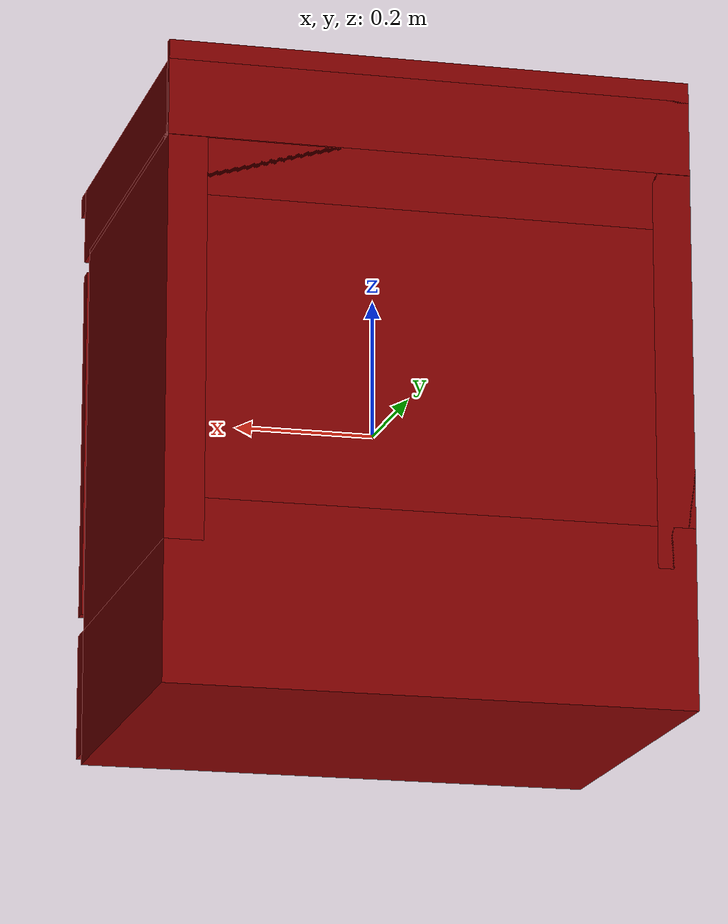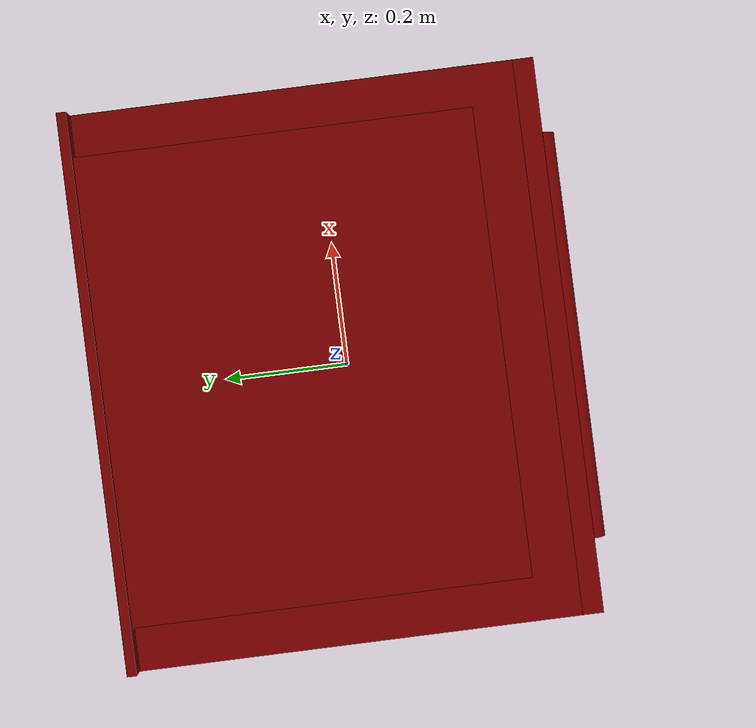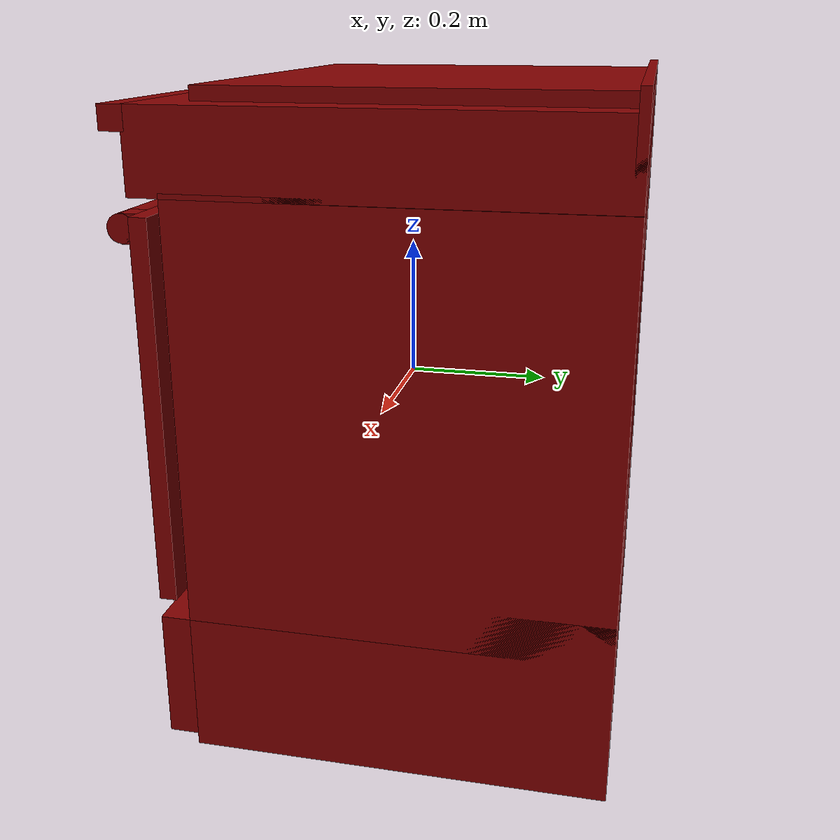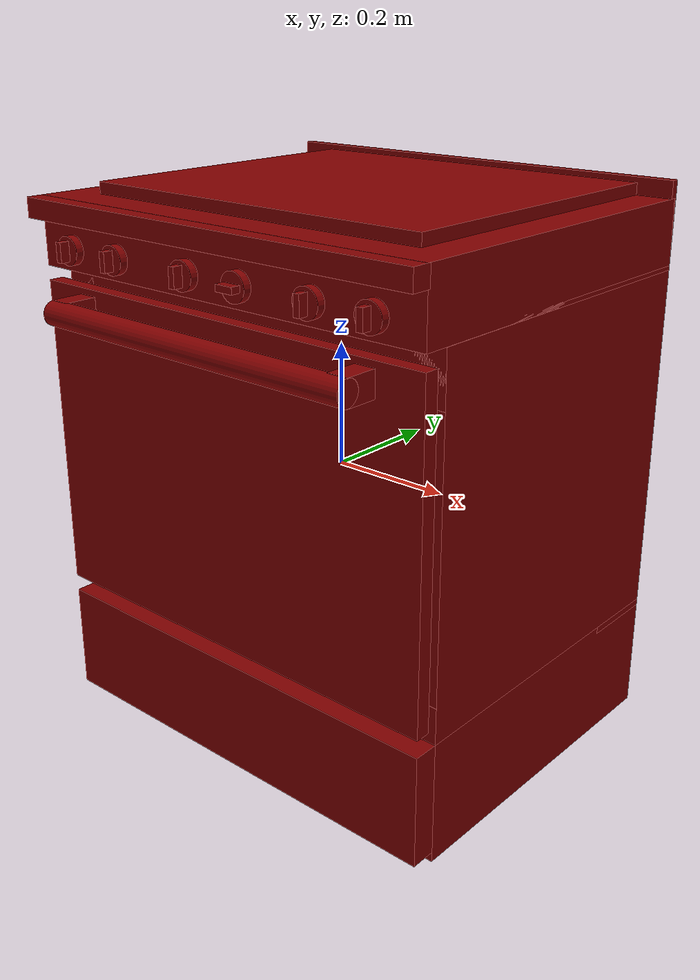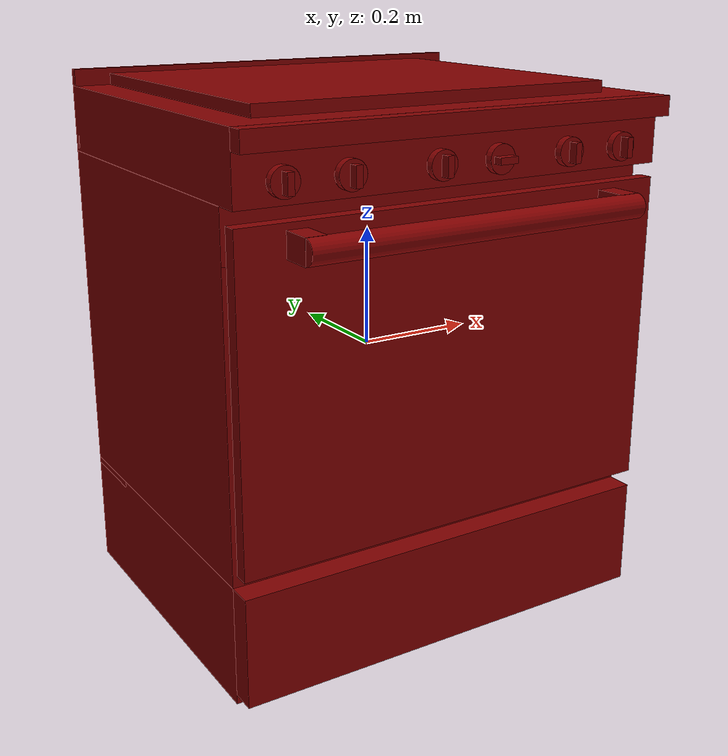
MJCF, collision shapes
<?xml version='1.0' encoding='UTF-8'?>
<mujoco model="model">
  <option timestep="0.002" gravity="0.0 0.0 -9.81"/>
  <compiler angle="radian"/>
  <asset>
    <mesh file="visuals/knob_front_left.obj" name="knob_front_left_vis"/>
    <mesh file="visuals/knob_front_right.obj" name="knob_front_right_vis"/>
    <mesh file="visuals/knob_rear_left.obj" name="knob_rear_left_vis"/>
    <mesh file="visuals/knob_rear_right.obj" name="knob_rear_right_vis"/>
    <mesh file="visuals/Body001.obj" name="Body001_vis"/>
    <mesh file="visuals/Door001.obj" name="Door001_vis"/>
    <mesh file="visuals/Door001_Clear.obj" name="Door001_Clear_vis"/>
    <mesh file="visuals/Knob001.obj" name="Knob001_vis"/>
    <mesh file="visuals/Knob002.obj" name="Knob002_vis"/>
    <mesh file="visuals/Shelf001.obj" name="Shelf001_vis"/>
    <texture file="visuals/T_BC001.png" name="Body001_material" type="2d"/>
    <material name="Body001_material" rgba="1 1 1 1.0" texture="Body001_material" shininess="0.1" specular="3"/>
    <texture file="visuals/T_BC001.png" name="knob_front_left_material" type="2d"/>
    <material name="knob_front_left_material" rgba="1 1 1 1.0" texture="knob_front_left_material" shininess="0.1" specular="1"/>
    <texture file="visuals/T_BC001.png" name="knob_front_right_material" type="2d"/>
    <material name="knob_front_right_material" rgba="1 1 1 1.0" texture="knob_front_right_material" shininess="0.1" specular="1"/>
    <texture file="visuals/T_BC001.png" name="knob_rear_left_material" type="2d"/>
    <material name="knob_rear_left_material" rgba="1 1 1 1.0" texture="knob_rear_left_material" shininess="0.1" specular="1"/>
    <texture file="visuals/T_BC001.png" name="knob_rear_right_material" type="2d"/>
    <material name="knob_rear_right_material" rgba="1 1 1 1.0" texture="knob_rear_right_material" shininess="0.1" specular="1"/>
    <texture file="visuals/T_BC001.png" name="Door001_material" type="2d"/>
    <material name="Door001_material" rgba="1 1 1 1.0" texture="Door001_material" shininess="0.1" specular="1"/>
    <texture file="visuals/T_BC001.png" name="Door001_Clear_material" type="2d"/>
    <material name="Door001_Clear_material" rgba="1 1 1 0.5" texture="Door001_Clear_material" shininess="0.1" specular="1"/>
    <texture file="visuals/T_BC001.png" name="Knob001_material" type="2d"/>
    <material name="Knob001_material" rgba="1 1 1 1.0" texture="Knob001_material" shininess="0.1" specular="1"/>
    <texture file="visuals/T_BC001.png" name="Knob002_material" type="2d"/>
    <material name="Knob002_material" rgba="1 1 1 1.0" texture="Knob002_material" shininess="0.1" specular="1"/>
    <texture file="visuals/T_BC001.png" name="Shelf001_material" type="2d"/>
    <material name="Shelf001_material" rgba="1 1 1 1.0" texture="Shelf001_material" shininess="0.1" specular="4"/>
  </asset>
  <default>
    <default class="visual">
      <geom conaffinity="0" contype="0" group="1" type="mesh"/>
    </default>
    <default class="collision">
      <geom group="0" rgba="0.5 0 0 0.5"/>
    </default>
    <default class="spawn">
      <geom group="0" rgba="1 1 1 0.5" contype="0" conaffinity="0"/>
      <site group="0" rgba="1 1 1 0.5"/>
    </default>
    <default class="region">
      <geom group="1" conaffinity="0" contype="0" rgba="0 1 0 0"/>
    </default>
  </default>
  <worldbody>
    <body>
      <body name="object">
        <geom mesh="Body001_vis" type="mesh" solimp="0.998 0.998 0.001" solref="0.001 1" friction="0.95 0.3 0.1" class="visual" material="Body001_material"/>
        <geom class="collision" type="box" pos="-0.34402626752853394 0.055402565747499466 0.029860632494091988" size="0.027638008818030357 0.2822645604610443 0.28328806161880493" quat="1.0 0.0 0.0 0.0" density="1000.0"/>
        <geom class="collision" type="box" pos="0.3441360890865326 0.05540267750620842 0.029860632494091988" size="0.027528250589966774 0.2822646498680115 0.28328806161880493" quat="1.0 0.0 0.0 0.0" density="1000.0"/>
        <geom class="collision" type="box" pos="2.865272108465433e-08 0.055402614176273346 -0.3221321403980255" size="0.3716641664505005 0.2822646200656891 0.12749764323234558" quat="1.0 0.0 0.0 0.0" density="1000.0"/>
        <geom class="collision" type="box" pos="2.865272108465433e-08 -0.24717018008232117 -0.34322062134742737" size="0.3716641664505005 0.020308177918195724 0.09009308367967606" quat="1.0 0.0 0.0 0.0" density="1000.0"/>
        <geom class="collision" type="box" pos="2.865272108465433e-08 0.055402614176273346 0.2752377688884735" size="0.3716641664505005 0.2822646200656891 0.04473291337490082" quat="1.0 0.0 0.0 0.0" density="1000.0"/>
        <geom class="collision" type="box" pos="2.865272108465433e-08 0.27195870876312256 0.023885294795036316" size="0.3716641664505005 0.06570849567651749 0.28845295310020447" quat="1.0 0.0 0.0 0.0" density="1000.0"/>
        <geom class="collision" type="box" pos="0.32416078448295593 0.0016778451390564442 0.017154984176158905" size="0.027589945122599602 0.17868469655513763 0.0013510260032489896" quat="1.0 0.0 0.0 0.0" density="1000.0"/>
        <geom class="collision" type="box" pos="0.33909156918525696 0.0016778451390564442 0.027264580130577087" size="0.027589945122599602 0.17868469655513763 0.011460619047284126" quat="1.0 0.0 0.0 0.0" density="1000.0"/>
        <geom class="collision" type="box" pos="0.3266005218029022 0.0016778451390564442 0.035905882716178894" size="0.027589945122599602 0.17868469655513763 0.003063765587285161" quat="1.0 0.0 0.0 0.0" density="1000.0"/>
        <geom class="collision" type="box" pos="-0.3259783685207367 0.0016778451390564442 0.017107784748077393" size="0.027589945122599602 0.17868469655513763 0.0013038265751674771" quat="1.0 0.0 0.0 0.0" density="1000.0"/>
        <geom class="collision" type="box" pos="-0.3385297656059265 0.0016778451390564442 0.027264580130577087" size="0.027589945122599602 0.17868469655513763 0.011460619047284126" quat="1.0 0.0 0.0 0.0" density="1000.0"/>
        <geom class="collision" type="box" pos="-0.3271794319152832 0.0016778451390564442 0.035905882716178894" size="0.027589945122599602 0.17868469655513763 0.003063765587285161" quat="1.0 0.0 0.0 0.0" density="1000.0"/>
        <geom class="collision" type="box" pos="-9.755603969097137e-08 0.03509461134672165 0.3678634762763977" size="0.37166425585746765 0.3025726079940796 0.054325878620147705" quat="1.0 0.0 0.0 0.0" density="1000.0"/>
        <geom class="collision" type="box" pos="0.0009600934572517872 0.05990978702902794 0.3847813010215759" size="0.31158381700515747 0.26489758491516113 0.05621837079524994" quat="1.0 0.0 0.0 0.0" density="1000.0"/>
        <geom class="collision" type="box" pos="-4.761386662721634e-08 0.33124834299087524 0.3842799961566925" size="0.37166422605514526 0.006418854929506779 0.06534989923238754" quat="1.0 0.0 0.0 0.0" density="1000.0"/>
        <geom class="collision" type="box" pos="3.1062924676916737e-07 -0.27926474809646606 0.40633416175842285" size="0.37166422605514526 0.016079125925898552 0.01576913148164749" quat="1.0 0.0 0.0 0.0" density="1000.0"/>
        <body name="knob_front_left">
          <joint axis="0.0 -1.0 0.0" pos="-0.3006363809108734 -0.27865397930145264 0.3468022644519806" limited="true" name="knob_front_left_joint" range="0.0 3.141592653589793" type="hinge" damping="0.05" armature="0.001" springref="-0.1"/>
          <geom mesh="knob_front_left_vis" type="mesh" solimp="0.998 0.998 0.001" solref="0.001 1" friction="0.95 0.3 0.1" class="visual" material="knob_front_left_material"/>
          <geom class="collision" type="cylinder" pos="-0.3004806935787201 -0.2749233841896057 0.34697121381759644" size="0.022574562579393387 0.006452969275414944" quat="0.7071068286895752 0.7071067690849304 0.0 0.0" density="1000.0"/>
          <geom class="collision" type="box" pos="-0.30066901445388794 -0.28849586844444275 0.3470154404640198" size="0.005231413524597883 0.008577979169785976 0.015703316777944565" quat="1.0 0.0 0.0 0.0" density="1000.0" name="knob_front_left_main"/>
        </body>
        <body name="knob_front_right">
          <joint axis="0.0 -1.0 0.0" pos="0.29257288575172424 -0.27865397930145264 0.3468022644519806" limited="true" name="knob_front_right_joint" range="0.0 3.141592653589793" type="hinge" damping="0.05" armature="0.001" springref="-0.1"/>
          <geom mesh="knob_front_right_vis" type="mesh" solimp="0.998 0.998 0.001" solref="0.001 1" friction="0.95 0.3 0.1" class="visual" material="knob_front_right_material"/>
          <geom class="collision" type="cylinder" pos="0.29287365078926086 -0.2749233841896057 0.34697121381759644" size="0.022574562579393387 0.006452969275414944" quat="0.7071068286895752 0.7071067690849304 0.0 0.0" density="1000.0"/>
          <geom class="collision" type="box" pos="0.29268530011177063 -0.28849586844444275 0.3470154404640198" size="0.005231413524597883 0.008577979169785976 0.015703316777944565" quat="1.0 0.0 0.0 0.0" density="1000.0" name="knob_front_right_main"/>
        </body>
        <body name="knob_rear_left">
          <joint axis="0.0 -1.0 0.0" pos="-0.1970641016960144 -0.27865397930145264 0.3468022644519806" limited="true" name="knob_rear_left_joint" range="0.0 3.141592653589793" type="hinge" damping="0.05" armature="0.001" springref="-0.1"/>
          <geom mesh="knob_rear_left_vis" type="mesh" solimp="0.998 0.998 0.001" solref="0.001 1" friction="0.95 0.3 0.1" class="visual" material="knob_rear_left_material"/>
          <geom class="collision" type="cylinder" pos="-0.19711965322494507 -0.2749233841896057 0.34697121381759644" size="0.022574562579393387 0.006452969275414944" quat="0.7071068286895752 0.7071067690849304 0.0 0.0" density="1000.0"/>
          <geom class="collision" type="box" pos="-0.19730797410011292 -0.28849586844444275 0.3470154404640198" size="0.005231413524597883 0.008577979169785976 0.015703316777944565" quat="1.0 0.0 0.0 0.0" density="1000.0" name="knob_rear_left_main"/>
        </body>
        <body name="knob_rear_right">
          <joint axis="0.0 -1.0 0.0" pos="0.18860802054405212 -0.27865397930145264 0.3468022644519806" limited="true" name="knob_rear_right_joint" range="0.0 3.141592653589793" type="hinge" damping="0.05" armature="0.001" springref="-0.1"/>
          <geom mesh="knob_rear_right_vis" type="mesh" solimp="0.998 0.998 0.001" solref="0.001 1" friction="0.95 0.3 0.1" class="visual" material="knob_rear_right_material"/>
          <geom class="collision" type="cylinder" pos="0.18872560560703278 -0.2749233841896057 0.34697121381759644" size="0.022574562579393387 0.006452969275414944" quat="0.7071068286895752 0.7071067690849304 0.0 0.0" density="1000.0"/>
          <geom class="collision" type="box" pos="0.18853728473186493 -0.28849586844444275 0.3470154404640198" size="0.005231413524597883 0.008577979169785976 0.015703316777944565" quat="1.0 0.0 0.0 0.0" density="1000.0" name="knob_rear_right_main"/>
        </body>
        <body name="Door001">
          <joint axis="1.0 0.0 0.0" pos="0.00013260284322313964 -0.26747801899909973 -0.2458133101463318" limited="true" name="Door001_joint" range="0.0 1.5707963267948966" type="hinge" damping="1" frictionloss="1" armature=".01" stiffness="0.05"/>
          <geom mesh="Door001_vis" type="mesh" solimp="0.998 0.998 0.001" solref="0.001 1" friction="0.95 0.3 0.1" class="visual" material="Door001_material"/>
          <geom class="collision" type="box" pos="5.809124559164047e-08 -0.25554361939430237 0.03270234540104866" size="0.37166374921798706 0.011934769339859486 0.25787872076034546" quat="1.0 0.0 0.0 0.0" density="1000.0"/>
          <geom class="collision" type="cylinder" pos="-6.037313369233743e-07 -0.3186875581741333 0.26034876704216003" size="0.01962883584201336 0.29335910081863403" quat="0.4999999701976776 0.5 0.5 0.5" density="1000.0"/>
          <geom class="collision" type="box" pos="0.2766115665435791 -0.29119494557380676 0.2601949870586395" size="0.016746893525123596 0.02831774391233921 0.019988402724266052" quat="1.0 0.0 0.0 0.0" density="1000.0"/>
          <geom class="collision" type="box" pos="-0.2769240438938141 -0.29119494557380676 0.2601949870586395" size="0.016746893525123596 0.02831774391233921 0.019988402724266052" quat="1.0 0.0 0.0 0.0" density="1000.0"/>
          <body name="Door001_Clear">
            <geom mesh="Door001_Clear_vis" type="mesh" solimp="0.998 0.998 0.001" solref="0.001 1" friction="0.95 0.3 0.1" class="visual" material="Door001_Clear_material"/>
            <geom class="collision" type="box" pos="5.809124559164047e-08 -0.24829308688640594 0.03270234912633896" size="0.2662014663219452 0.0020728178787976503 0.16036032140254974" quat="1.0 0.0 0.0 0.0" density="1000.0"/>
          </body>
        </body>
        <body name="Knob001">
          <joint axis="0.0 1.0 0.0" pos="-0.04638072848320007 -0.27865397930145264 0.3468022644519806" limited="true" name="Knob001_joint" range="0.0 4.014257279586958" type="hinge" damping="0.05" armature="0.001"/>
          <geom mesh="Knob001_vis" type="mesh" solimp="0.998 0.998 0.001" solref="0.001 1" friction="0.95 0.3 0.1" class="visual" material="Knob001_material"/>
          <geom class="collision" type="cylinder" pos="-0.04642404615879059 -0.2749233841896057 0.34697121381759644" size="0.022574562579393387 0.006452969275414944" quat="0.7071068286895752 0.7071067690849304 0.0 0.0" density="1000.0"/>
          <geom class="collision" type="box" pos="-0.046612367033958435 -0.28849586844444275 0.3470154404640198" size="0.005231413524597883 0.008577979169785976 0.015703316777944565" quat="1.0 0.0 0.0 0.0" density="1000.0"/>
        </body>
        <body name="Knob002">
          <joint axis="0.0 1.0 0.0" pos="0.0571848563849926 -0.27865397930145264 0.3470958471298218" limited="true" name="Knob002_joint" range="0.0 3.2288591161895095" type="hinge" damping="0.05" armature="0.001"/>
          <geom mesh="Knob002_vis" type="mesh" solimp="0.998 0.998 0.001" solref="0.001 1" friction="0.95 0.3 0.1" class="visual" material="Knob002_material"/>
          <geom class="collision" type="cylinder" pos="0.05717620998620987 -0.2749233841896057 0.34697121381759644" size="0.022574562579393387 0.006452969275414944" quat="0.7071068286895752 0.7071067690849304 0.0 0.0" density="1000.0"/>
          <geom class="collision" type="box" pos="0.05673101916909218 -0.28849586844444275 0.3470154404640198" size="0.015703316777944565 0.008577979169785976 0.005231414455920458" quat="1.0 0.0 0.0 0.0" density="1000.0"/>
        </body>
        <body name="Shelf001">
          <joint axis="0.0 -1.0 0.0" pos="-0.0013591349124908447 0.001485973596572876 0.02870890498161316" limited="true" name="Shelf001_joint" range="0.0 0.25" type="slide" damping="1" frictionloss="1" armature=".01" stiffness="0.05"/>
          <geom mesh="Shelf001_vis" type="mesh" solimp="0.998 0.998 0.001" solref="0.001 1" friction="0.95 0.3 0.1" class="visual" material="Shelf001_material"/>
          <geom class="collision" type="box" pos="0.0013725600438192487 0.0020056001376360655 0.030935153365135193" size="0.2908157706260681 0.19227856397628784 0.0032185327727347612" quat="1.0 0.0 0.0 0.0" density="1000.0"/>
          <geom class="collision" type="box" pos="0.2982712686061859 0.0020056001376360655 0.02805294096469879" size="0.012118300423026085 0.19227856397628784 0.0032185327727347612" quat="0.9565491080284119 0.0 0.2915712893009186 0.0" density="1000.0"/>
          <geom class="collision" type="box" pos="-0.2965599596500397 0.0020056001376360655 0.02805294096469879" size="0.012118300423026085 0.19227856397628784 0.0032185327727347612" quat="0.9565491080284119 0.0 -0.2915712893009186 0.0" density="1000.0"/>
        </body>
        <site type="cylinder" rgba="0.3 0.4 1 0.5" size="0.04812531918287277 0.011605587787926197" pos="-0.17791149020195007 -0.05579596757888794 0.40159741044044495" name="burner_on_front_left"/>
        <site type="cylinder" rgba="0.3 0.4 1 0.5" size="0.046495940536260605 0.011605587787926197" pos="0.1766817569732666 -0.0551004558801651 0.40159741044044495" name="burner_on_front_right"/>
        <site type="cylinder" rgba="0.3 0.4 1 0.5" size="0.04723677411675453 0.011605587787926197" pos="-0.17778095602989197 0.18014904856681824 0.4006651043891907" name="burner_on_rear_left"/>
        <site type="cylinder" rgba="0.3 0.4 1 0.5" size="0.04766416922211647 0.011605587787926197" pos="0.17698660492897034 0.17922794818878174 0.40159741044044495" name="burner_on_rear_right"/>
        <geom class="region" name="reg_int" type="box" pos="0.0004807114601135254 -0.009686745703220367 0.017490632832050323" size="0.31678175926208496 0.21685624867677689 0.21230459958314896"/>
        <site name="burner_front_left_place_site" type="cylinder" rgba="0.3 0.4 1 0" size="0.04812531918287277 0.011605587787926197" pos="-0.17791149020195007 -0.05579596757888794 0.40159741044044495"/>
        <site name="burner_front_right_place_site" type="cylinder" rgba="0.3 0.4 1 0" size="0.046495940536260605 0.011605587787926197" pos="0.1766817569732666 -0.0551004558801651 0.40159741044044495"/>
        <site name="burner_rear_left_place_site" type="cylinder" rgba="0.3 0.4 1 0" size="0.04723677411675453 0.011605587787926197" pos="-0.17778095602989197 0.18014904856681824 0.4006651043891907"/>
        <site name="burner_rear_right_place_site" type="cylinder" rgba="0.3 0.4 1 0" size="0.04766416922211647 0.011605587787926197" pos="0.17698660492897034 0.17922794818878174 0.40159741044044495"/>
        <geom class="region" name="reg_main" type="box" pos="-7.450580596923828e-09 0.03509463369846344 -0.013720221817493439" size="0.3716643154621124 0.3025726079940796 0.43590956926345825"/>
      </body>
    </body>
  </worldbody>
  <actuator>
    <motor name="knob_front_left_joint_actuator" joint="knob_front_left_joint" gear="10"/>
    <motor name="knob_front_right_joint_actuator" joint="knob_front_right_joint" gear="10"/>
    <motor name="knob_rear_left_joint_actuator" joint="knob_rear_left_joint" gear="10"/>
    <motor name="knob_rear_right_joint_actuator" joint="knob_rear_right_joint" gear="10"/>
    <motor name="Door001_joint_actuator" joint="Door001_joint" gear="50"/>
    <motor name="Knob001_joint_actuator" joint="Knob001_joint" gear="50"/>
    <motor name="Knob002_joint_actuator" joint="Knob002_joint" gear="50"/>
    <motor name="Shelf001_joint_actuator" joint="Shelf001_joint" gear="50"/>
  </actuator>
</mujoco>
